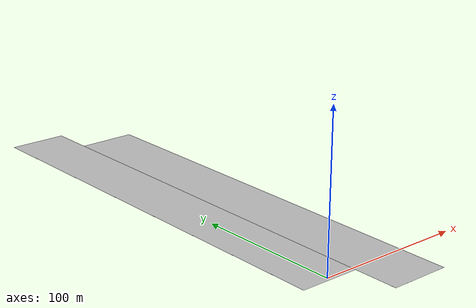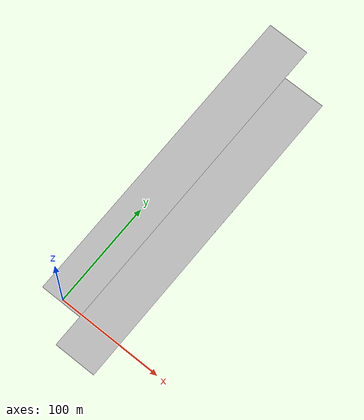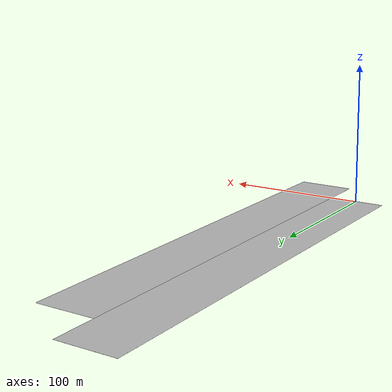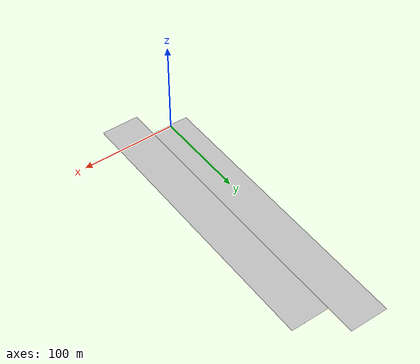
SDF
<?xml version="1.0" ?>
<sdf version="1.4">
	<world name="default">
		<include>
			<uri>model://sun</uri>
		</include>

		<model name='landmass'>
			<static>1</static>
			<link name='link'>
				<pose>0 0 0.01 0 -0 0</pose>
				<collision name='wall1'>
					<geometry>
						<box>
							<size>1 1 1</size>
						</box>
					</geometry>
					<max_contacts>10</max_contacts>
					<surface>
						<bounce/>
						<friction>
							<ode/>
						</friction>
						<contact>
							<ode/>
						</contact>
					</surface>
				</collision>
				<visual name='visual1'>
					<geometry>
						<box>
							<size>40 300 0.01</size>
						</box>
					</geometry>
				</visual>
				<velocity_decay>
					<linear>0</linear>
					<angular>0</angular>
				</velocity_decay>
				<self_collide>0</self_collide>
				<kinematic>0</kinematic>
				<gravity>1</gravity>
			</link>
			<pose>0 148 0 0 0 0</pose>
		</model>

		<model name='landmass_2'>
			<static>1</static>
			<link name='link'>
				<pose>0 0 0.01 0 -0 0</pose>
				<collision name='wall1'>
					<geometry>
						<box>
							<size>1 1 1</size>
						</box>
					</geometry>
					<max_contacts>10</max_contacts>
					<surface>
						<bounce/>
						<friction>
							<ode/>
						</friction>
						<contact>
							<ode/>
						</contact>
					</surface>
				</collision>
				<visual name='visual1'>
					<geometry>
						<box>
							<size>40 300 0.01</size>
						</box>
					</geometry>
				</visual>
				<velocity_decay>
					<linear>0</linear>
					<angular>0</angular>
				</velocity_decay>
				<self_collide>0</self_collide>
				<kinematic>0</kinematic>
				<gravity>1</gravity>
			</link>
			<pose>40 118 0 0 0 0</pose>
		</model>

		<physics type='ode'>
			<max_step_size>0.001</max_step_size>
			<real_time_factor>1</real_time_factor>
			<real_time_update_rate>1000</real_time_update_rate>
			<gravity>0 0 0</gravity>
		</physics>

	</world>
</sdf>
